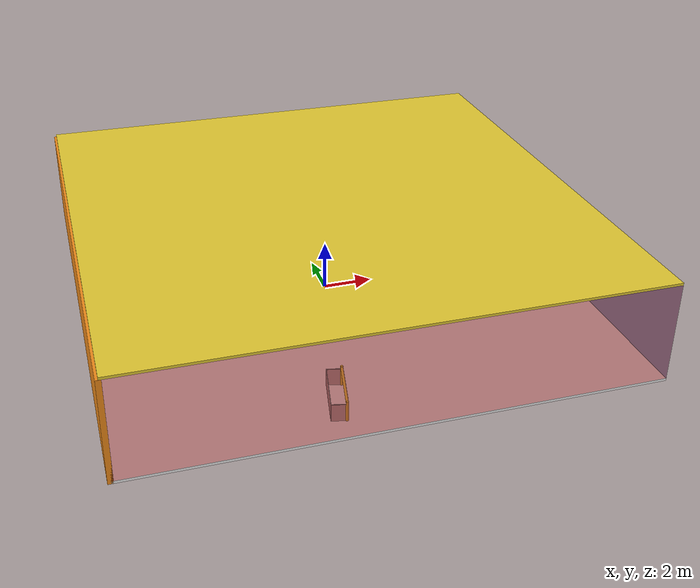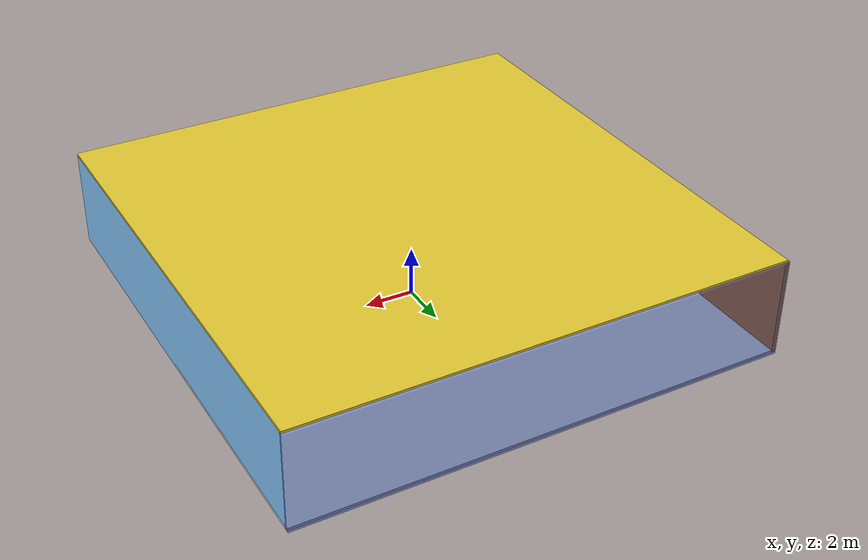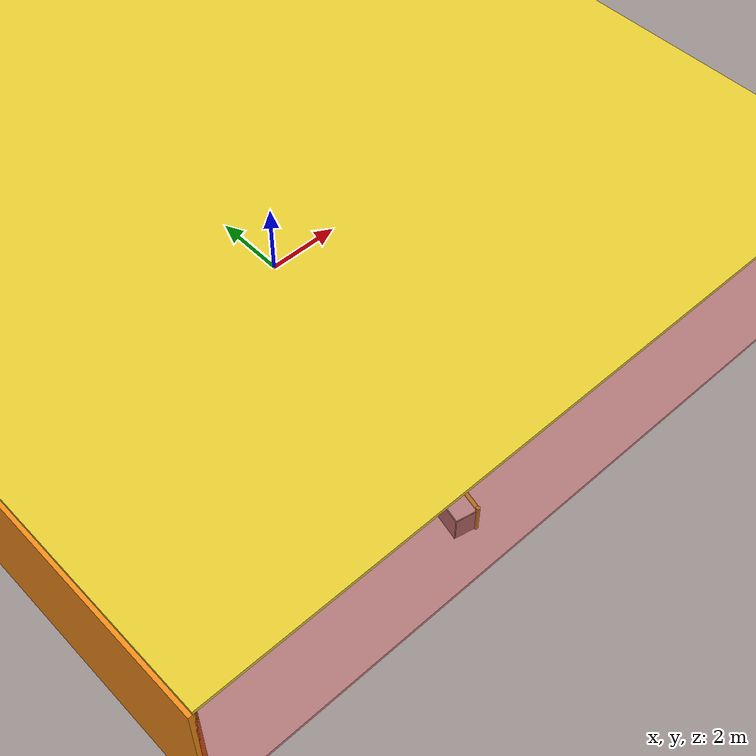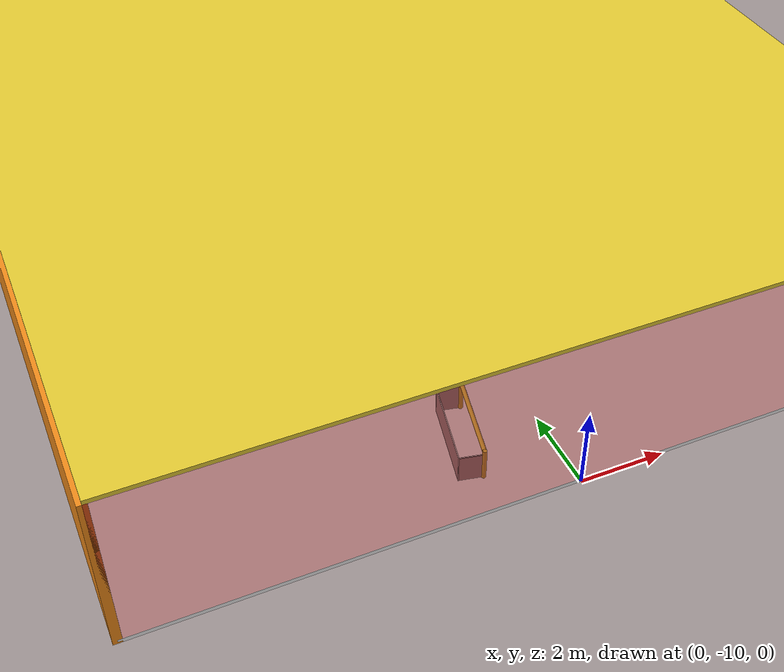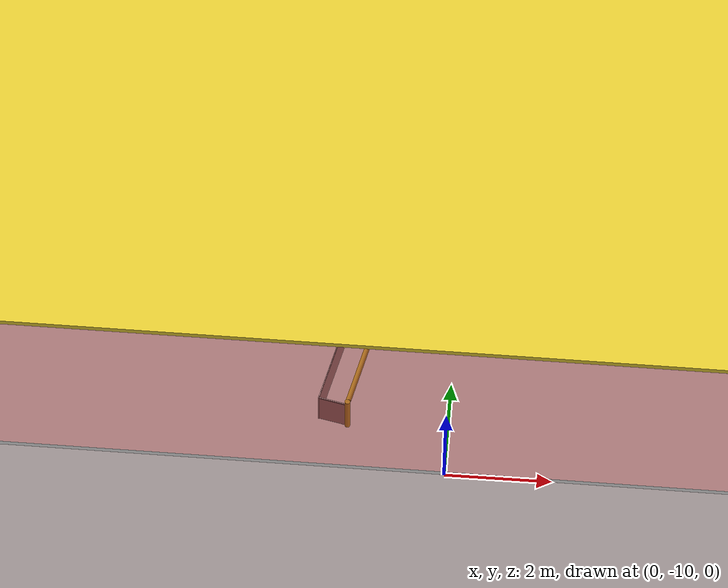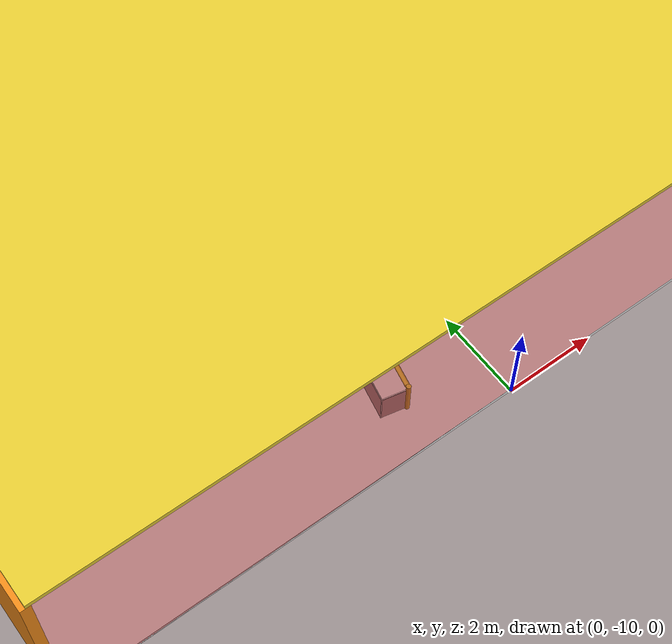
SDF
<sdf version="1.4">
 <world name="default">
  <physics type="ode">
   <max_step_size>0.001</max_step_size>
   <real_time_factor>1</real_time_factor>
   <real_time_update_rate>1000</real_time_update_rate>
   <gravity>0 0 -9.8</gravity>
  </physics>
  <scene><ambient>0.4 0.4 0.4 1</ambient><background>0.7 0.7 0.7 1</background><shadows>1</shadows></scene>
  <model name="Surrounding">
   <static>1</static>
   <link name="Ceiling">
    <collision name="Ceiling_Collision"><geometry><box><size>20 20 0.1</size></box></geometry></collision>
    <visual name="Ceiling_Visual">
     <geometry><box><size>20 20 0.1</size></box></geometry>
     <material>
      <script><uri>file://media/materials/scripts/gazebo.material</uri><name>Gazebo/ZincYellow</name></script>
     </material>
    </visual>
    <pose>0 0 4.05 0 0 0</pose>
   </link>
   <link name="Wall_South">
    <collision name="Wall_South_Collision">
     <geometry><box><size>20 0 4</size></box></geometry>
     <pose>0 0 2 0 -0 0</pose>
    </collision>
    <visual name="Wall_South_Visual">
     <pose>0 0 2 0 -0 0</pose>
     <geometry><box><size>20 0 4</size></box></geometry>
     <material>
      <script><uri>file://media/materials/scripts/gazebo.material</uri><name>Gazebo/RedTransparent</name></script>
     </material>
    </visual>
    <velocity_decay><linear>0</linear><angular>0</angular></velocity_decay>
    <pose>0 -10 0 0 -0 0</pose>
   </link>
   <link name="Wall_East">
    <collision name="Wall_21_Collision">
     <geometry><box><size>20 0 4</size></box></geometry>
     <pose>0 0 2 0 -0 0</pose>
    </collision>
    <visual name="Wall_21_Visual">
     <pose>0 0 2 0 -0 0</pose>
     <geometry><box><size>20 0 4</size></box></geometry>
     <material>
      <script><uri>file://media/materials/scripts/gazebo.material</uri><name>Gazebo/SkyBlue</name></script>
     </material>
    </visual>
    <velocity_decay><linear>0</linear><angular>0</angular></velocity_decay>
    <pose>10 0 0 0 -0 1.5708</pose>
   </link>
   <link name="Wall_North">
    <collision name="Wall_22_Collision">
     <geometry><box><size>20 0.2 4</size></box></geometry>
     <pose>0 0 2 0 -0 0</pose>
    </collision>
    <visual name="Wall_22_Visual">
     <pose>0 0 2 0 -0 0</pose>
     <geometry><box><size>20 0.2 4</size></box></geometry>
     <material>
      <script><uri>file://media/materials/scripts/gazebo.material</uri><name>Gazebo/BlueTransparent</name></script>
     </material>
    </visual>
    <velocity_decay><linear>0</linear><angular>0</angular></velocity_decay>
    <pose>0 10 0 0 -0 0</pose>
   </link>
   <link name="Wall_West">
    <collision name="Wall_23_Collision">
     <geometry><box><size>20 0.2 4</size></box></geometry>
     <pose>0 0 2 0 -0 0</pose>
    </collision>
    <visual name="Wall_23_Visual">
     <pose>0 0 2 0 -0 0</pose>
     <geometry><box><size>20 0.2 4</size></box></geometry>
     <material>
      <script><uri>file://media/materials/scripts/gazebo.material</uri><name>Gazebo/Orange</name></script>
     </material>
    </visual>
    <velocity_decay><linear>0</linear><angular>0</angular></velocity_decay>
    <pose>-10 0 0 0 0 -1.5708</pose>
   </link>
   <link name="Ground_link">
    <collision name="collision">
     <pose>0 0 .05 0 -0 0</pose>
     <geometry><box><size>20 20 0.1</size></box></geometry>
    </collision>
    <visual name="visual">
     <pose>0 0 .05 0 -0 0</pose>
     <geometry><box><size>20 20 0.1</size></box></geometry>
     <material>
      <script><uri>file://media/materials/scripts/gazebo.material</uri><name>Gazebo/WhiteGlow</name></script>
     </material>
    </visual>
   </link>
   <static>1</static>
  </model>
  <spherical_coordinates>
   <surface_model>EARTH_WGS84</surface_model>
   <latitude_deg>0</latitude_deg>
   <longitude_deg>0</longitude_deg>
   <elevation>0</elevation>
   <heading_deg>0</heading_deg>
  </spherical_coordinates>
  <light name="lightball_0" type="diffuse">
   <diffuse>0.8 0.8 0.8 1</diffuse>
   <specular>0.2 0.2 0.2 1</specular>
   <attenuation>
    <range>100</range>
    <constant>0.7</constant>
    <linear>0.01</linear>
    <quadratic>0.001</quadratic>
   </attenuation>
   <direction>-0.5 0.1 -0.9</direction>
   <pose>-1.20090064215 5.42925227162 2.221063189 0 0 0</pose>
  </light>
  <light name="lightball_1" type="diffuse">
   <diffuse>0.8 0.8 0.8 1</diffuse>
   <specular>0.2 0.2 0.2 1</specular>
   <attenuation>
    <range>100</range>
    <constant>0.7</constant>
    <linear>0.01</linear>
    <quadratic>0.001</quadratic>
   </attenuation>
   <direction>-0.5 0.1 -0.9</direction>
   <pose>1.84541804005 -8.06533191923 0.989058058903 0 0 0</pose>
  </light>
  <light name="lightball_2" type="diffuse">
   <diffuse>0.8 0.8 0.8 1</diffuse>
   <specular>0.2 0.2 0.2 1</specular>
   <attenuation>
    <range>100</range>
    <constant>0.7</constant>
    <linear>0.01</linear>
    <quadratic>0.001</quadratic>
   </attenuation>
   <direction>-0.5 0.1 -0.9</direction>
   <pose>-0.308325625561 -8.59317715274 1.47175827231 0 0 0</pose>
  </light>
  <light name="lightball_3" type="diffuse">
   <diffuse>0.8 0.8 0.8 1</diffuse>
   <specular>0.2 0.2 0.2 1</specular>
   <attenuation>
    <range>100</range>
    <constant>0.7</constant>
    <linear>0.01</linear>
    <quadratic>0.001</quadratic>
   </attenuation>
   <direction>-0.5 0.1 -0.9</direction>
   <pose>2.35021699208 -0.629440433577 2.91976731105 0 0 0</pose>
  </light>
  <light name="lightball_4" type="diffuse">
   <diffuse>0.8 0.8 0.8 1</diffuse>
   <specular>0.2 0.2 0.2 1</specular>
   <attenuation>
    <range>100</range>
    <constant>0.7</constant>
    <linear>0.01</linear>
    <quadratic>0.001</quadratic>
   </attenuation>
   <direction>-0.5 0.1 -0.9</direction>
   <pose>6.48578118685 4.26691342567 2.30659713739 0 0 0</pose>
  </light>
  <light name="lightball_5" type="diffuse">
   <diffuse>0.8 0.8 0.8 1</diffuse>
   <specular>0.2 0.2 0.2 1</specular>
   <attenuation>
    <range>100</range>
    <constant>0.7</constant>
    <linear>0.01</linear>
    <quadratic>0.001</quadratic>
   </attenuation>
   <direction>-0.5 0.1 -0.9</direction>
   <pose>3.79740473295 -2.50715968144 1.17954599766 0 0 0</pose>
  </light>
  <light name="lightball_6" type="diffuse">
   <diffuse>0.8 0.8 0.8 1</diffuse>
   <specular>0.2 0.2 0.2 1</specular>
   <attenuation>
    <range>100</range>
    <constant>0.7</constant>
    <linear>0.01</linear>
    <quadratic>0.001</quadratic>
   </attenuation>
   <direction>-0.5 0.1 -0.9</direction>
   <pose>1.81718992502 -4.47208255064 0.924515944407 0 0 0</pose>
  </light>
  <light name="lightball_7" type="diffuse">
   <diffuse>0.8 0.8 0.8 1</diffuse>
   <specular>0.2 0.2 0.2 1</specular>
   <attenuation>
    <range>100</range>
    <constant>0.7</constant>
    <linear>0.01</linear>
    <quadratic>0.001</quadratic>
   </attenuation>
   <direction>-0.5 0.1 -0.9</direction>
   <pose>7.84037366361 -7.75096274424 0.751838393282 0 0 0</pose>
  </light>
  <light name="lightball_8" type="diffuse">
   <diffuse>0.8 0.8 0.8 1</diffuse>
   <specular>0.2 0.2 0.2 1</specular>
   <attenuation>
    <range>100</range>
    <constant>0.7</constant>
    <linear>0.01</linear>
    <quadratic>0.001</quadratic>
   </attenuation>
   <direction>-0.5 0.1 -0.9</direction>
   <pose>-3.1874621213 3.7820242938 1.99526250897 0 0 0</pose>
  </light>
  <light name="lightball_9" type="diffuse">
   <diffuse>0.8 0.8 0.8 1</diffuse>
   <specular>0.2 0.2 0.2 1</specular>
   <attenuation>
    <range>100</range>
    <constant>0.7</constant>
    <linear>0.01</linear>
    <quadratic>0.001</quadratic>
   </attenuation>
   <direction>-0.5 0.1 -0.9</direction>
   <pose>-9.70898334481 -0.581962970494 0.693082045054 0 0 0</pose>
  </light>
  <light name="lightball_10" type="diffuse">
   <diffuse>0.8 0.8 0.8 1</diffuse>
   <specular>0.2 0.2 0.2 1</specular>
   <attenuation>
    <range>100</range>
    <constant>0.7</constant>
    <linear>0.01</linear>
    <quadratic>0.001</quadratic>
   </attenuation>
   <direction>-0.5 0.1 -0.9</direction>
   <pose>6.52711951405 -0.186285022198 0.749848248393 0 0 0</pose>
  </light>
  <include>
   <uri>model://robocup_3Dsim_goal</uri>
   <pose>-1.66469546977 -8.08777838768 0 0 0 2.93250784708</pose>
  </include>
  <include><uri>model://cabinet</uri><pose>2.37660645561 4.63186774667 0 0 0 0.631832376645</pose></include>
  <include><uri>model://cabinet</uri><pose>5.62770803821 4.72266779889 0 0 0 1.25223311086</pose></include>
 </world>
</sdf>

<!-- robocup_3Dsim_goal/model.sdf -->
<sdf version="1.5">
  <model name="robocup_3d_goal">
    <static>true</static>
    <link name="left_post">
      <pose>0 1.05 0.45 0 0 0</pose>
      <collision name="collision">
        <geometry>
          <cylinder>
            <radius>0.05</radius>
            <length>0.9</length>
          </cylinder>
        </geometry>
      </collision>
      <visual name="visual">
        <geometry>
          <cylinder>
            <radius>0.05</radius>
            <length>0.9</length>
          </cylinder>
        </geometry>
        <material>
          <script>
            <uri>file://media/materials/scripts/gazebo.material</uri>
            <name>Gazebo/ZincYellow</name>
          </script>
        </material>
      </visual>
    </link>
    <link name="left_support_horiz_lower">
      <pose>0.30 1.05 0.01 0 0 0</pose>
      <collision name="collision">
        <geometry>
          <box>
            <size>0.50 0.02 0.02</size>
          </box>
        </geometry>
      </collision>
      <visual name="visual">
        <geometry>
          <box>
            <size>0.50 0.02 0.02</size>
          </box>
        </geometry>
        <material>
          <script>
            <uri>file://media/materials/scripts/gazebo.material</uri>
            <name>Gazebo/White</name>
          </script>
        </material>
      </visual>
    </link>
    <link name="left_support_horiz_upper">
      <pose>0.30 1.05 0.79 0 0 0</pose>
      <collision name="collision">
        <geometry>
          <box>
            <size>0.50 0.02 0.02</size>
          </box>
        </geometry>
      </collision>
      <visual name="visual">
        <geometry>
          <box>
            <size>0.50 0.02 0.02</size>
          </box>
        </geometry>
        <material>
          <script>
            <uri>file://media/materials/scripts/gazebo.material</uri>
            <name>Gazebo/White</name>
          </script>
        </material>
      </visual>
    </link>
    <link name="left_support_vertical">
      <pose>0.56 1.05 0.4 0 1.5708 0</pose>
      <collision name="collision">
        <geometry>
          <box>
            <size>0.80 0.02 0.02</size>
          </box>
        </geometry>
      </collision>
      <visual name="visual">
        <geometry>
          <box>
            <size>0.80 0.02 0.02</size>
          </box>
        </geometry>
        <material>
          <script>
            <uri>file://media/materials/scripts/gazebo.material</uri>
            <name>Gazebo/White</name>
          </script>
        </material>
      </visual>
    </link>
    <link name="right_support_horiz_lower">
      <pose>0.30 -1.05 0.01 0 0 0</pose>
      <collision name="collision">
        <geometry>
          <box>
            <size>0.50 0.02 0.02</size>
          </box>
        </geometry>
      </collision>
      <visual name="visual">
        <geometry>
          <box>
            <size>0.50 0.02 0.02</size>
          </box>
        </geometry>
        <material>
          <script>
            <uri>file://media/materials/scripts/gazebo.material</uri>
            <name>Gazebo/White</name>
          </script>
        </material>
      </visual>
    </link>
    <link name="right_support_horiz_upper">
      <pose>0.30 -1.05 0.79 0 0 0</pose>
      <collision name="collision">
        <geometry>
          <box>
            <size>0.50 0.02 0.02</size>
          </box>
        </geometry>
      </collision>
      <visual name="visual">
        <geometry>
          <box>
            <size>0.50 0.02 0.02</size>
          </box>
        </geometry>
        <material>
          <script>
            <uri>file://media/materials/scripts/gazebo.material</uri>
            <name>Gazebo/White</name>
          </script>
        </material>
      </visual>
    </link>
    <link name="right_support_vertical">
      <pose>0.56 -1.05 0.4 0 1.5708 0</pose>
      <collision name="collision">
        <geometry>
          <box>
            <size>0.80 0.02 0.02</size>
          </box>
        </geometry>
      </collision>
      <visual name="visual">
        <geometry>
          <box>
            <size>0.80 0.02 0.02</size>
          </box>
        </geometry>
        <material>
          <script>
            <uri>file://media/materials/scripts/gazebo.material</uri>
            <name>Gazebo/White</name>
          </script>
        </material>
      </visual>
    </link>
    <link name="center_support_horiz_lower">
      <pose>0.56 0 0.01 0 1.5708 0</pose>
      <collision name="collision">
        <geometry>
          <box>
            <size>0.02 2.08 0.02</size>
          </box>
        </geometry>
      </collision>
      <visual name="visual">
        <geometry>
          <box>
            <size>0.02 2.08 0.02</size>
          </box>
        </geometry>
        <material>
          <script>
            <uri>file://media/materials/scripts/gazebo.material</uri>
            <name>Gazebo/White</name>
          </script>
        </material>
      </visual>
    </link>
    <link name="center_support_horiz_upper">
      <pose>0.56 0 0.79 0 1.5708 0</pose>
      <collision name="collision">
        <geometry>
          <box>
            <size>0.02 2.08 0.02</size>
          </box>
        </geometry>
      </collision>
      <visual name="visual">
        <geometry>
          <box>
            <size>0.02 2.08 0.02</size>
          </box>
        </geometry>
        <material>
          <script>
            <uri>file://media/materials/scripts/gazebo.material</uri>
            <name>Gazebo/White</name>
          </script>
        </material>
      </visual>
    </link>
    <link name="right_post">
      <pose>0 -1.05 0.45 0 0 0</pose>
      <collision name="collision">
        <geometry>
          <cylinder>
            <radius>0.05</radius>
            <length>0.9</length>
          </cylinder>
        </geometry>
      </collision>
      <visual name="visual">
        <geometry>
          <cylinder>
            <radius>0.05</radius>
            <length>0.9</length>
          </cylinder>
        </geometry>
        <material>
          <script>
            <uri>file://media/materials/scripts/gazebo.material</uri>
            <name>Gazebo/ZincYellow</name>
          </script>
        </material>
      </visual>
    </link>
    <link name="crossbar">
      <pose>0 0 0.85 1.57 1.57 0</pose>
      <collision name="collision">
        <geometry>
          <cylinder>
            <radius>0.05</radius>
            <length>2.0</length>
          </cylinder>
        </geometry>
      </collision>
      <visual name="visual">
        <geometry>
          <cylinder>
            <radius>0.05</radius>
            <length>2.0</length>
          </cylinder>
        </geometry>
        <material>
          <script>
            <uri>file://media/materials/scripts/gazebo.material</uri>
            <name>Gazebo/ZincYellow</name>
          </script>
        </material>
      </visual>
    </link>
    <link name="center_net">
      <pose>0.56 0 0.40 0 0 0</pose>
      <collision name="collision">
        <geometry>
          <box>
            <size>0.01 2.1 0.80</size>
          </box>
        </geometry>
      </collision>
      <visual name="visual">
        <geometry>
          <box>
            <size>0.01 2.1 0.80</size>
          </box>
        </geometry>
        <material>
          <script>
            <uri>model://../model_source/models/robocup09_spl_field/materials/scripts/</uri>
            <uri>model://../model_source/models/robocup09_spl_field/materials/textures/</uri>
            <name>RoboCup/Net</name>
          </script>
        </material>
      </visual>
    </link>
    <link name="left_net">
      <pose>0.30 1.05 0.40 0 0 0</pose>
      <collision name="collision">
        <geometry>
          <box>
            <size>0.50 0.01 0.76</size>
          </box>
        </geometry>
      </collision>
      <visual name="visual">
        <geometry>
          <box>
            <size>0.50 0.01 0.76</size>
          </box>
        </geometry>
        <material>
          <script>
            <uri>model://../model_source/models/robocup09_spl_field/materials/scripts/</uri>
            <uri>model://../model_source/models/robocup09_spl_field/materials/textures/</uri>
            <name>RoboCup/Net</name>
          </script>
        </material>
      </visual>
    </link>
    <link name="right_net">
      <pose>0.30 -1.05 0.40 0 0 0</pose>
      <collision name="collision">
        <geometry>
          <box>
            <size>0.50 0.01 0.76</size>
          </box>
        </geometry>
      </collision>
      <visual name="visual">
        <geometry>
          <box>
            <size>0.50 0.01 0.76</size>
          </box>
        </geometry>
        <material>
          <script>
            <uri>model://../model_source/models/robocup09_spl_field/materials/scripts/</uri>
            <uri>model://../model_source/models/robocup09_spl_field/materials/textures/</uri>
            <name>RoboCup/Net</name>
          </script>
        </material>
      </visual>
    </link>
  </model>
</sdf>

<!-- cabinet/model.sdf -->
<sdf version="1.5">
  <model name="cabinet">
    <static>true</static>
    <link name="cabinet_bottom_plate">
      <inertial>
        <pose>0 0 -1 0 0 0</pose>
        <inertia>
          <ixx>2.050000</ixx>
          <ixy>0</ixy>
          <ixz>0</ixz>
          <iyy>2.050000</iyy>
          <iyz>0</iyz>
          <izz>2.050000</izz>
        </inertia>
        <mass>25.000000</mass>
      </inertial>
      <collision name="cabinet_bottom_plate_geom">
        <pose>0 0 0.010000 0 0 0</pose>
        <geometry>
          <box>
            <size>0.450000 0.450000 0.020000</size>
          </box>
        </geometry>
      </collision>
      <visual name="cabinet_bottom_plate_geom_visual">
        <pose>0 0 0.010000 0 0 0</pose>
        <geometry>
          <box>
            <size>0.450000 0.450000 0.020000</size>
          </box>
        </geometry>
        <material>
          <script>
            <uri>model://media/materials/scripts/gazebo.material</uri>
            <name>Gazebo/Wood</name>
          </script>
        </material>
      </visual>
      <collision name="cabinet_bottom_plate_geom_cabinet_back_plate">
        <pose>0.235000 0 0.510000 0 0 0</pose>
        <geometry>
          <box>
            <size>0.020000 0.450000 1.020000</size>
          </box>
        </geometry>
      </collision>
      <visual name="cabinet_bottom_plate_geom_cabinet_back_plate_visual">
        <pose>0.235000 0 0.510000 0 0 0</pose>
        <geometry>
          <box>
            <size>0.020000 0.450000 1.020000</size>
          </box>
        </geometry>
        <material>
          <script>
            <uri>model://media/materials/scripts/gazebo.material</uri>
            <name>Gazebo/Wood</name>
          </script>
        </material>
      </visual>
      <collision name="cabinet_bottom_plate_geom_cabinet_left_plate">
        <pose>0 0.235000 0.510000 0 0 0</pose>
        <geometry>
          <box>
            <size>0.450000 0.020000 1.020000</size>
          </box>
        </geometry>
      </collision>
      <visual name="cabinet_bottom_plate_geom_cabinet_left_plate_visual">
        <pose>0 0.235000 0.510000 0 0 0</pose>
        <geometry>
          <box>
            <size>0.450000 0.020000 1.020000</size>
          </box>
        </geometry>
        <material>
          <script>
            <uri>model://media/materials/scripts/gazebo.material</uri>
            <name>Gazebo/Wood</name>
          </script>
        </material>
      </visual>
      <collision name="cabinet_bottom_plate_geom_cabinet_middle_plate">
        <pose>0 0 0.510000 0 0 0</pose>
        <geometry>
          <box>
            <size>0.450000 0.450000 0.020000</size>
          </box>
        </geometry>
      </collision>
      <visual name="cabinet_bottom_plate_geom_cabinet_middle_plate_visual">
        <pose>0 0 0.510000 0 0 0</pose>
        <geometry>
          <box>
            <size>0.450000 0.450000 0.020000</size>
          </box>
        </geometry>
        <material>
          <script>
            <uri>model://media/materials/scripts/gazebo.material</uri>
            <name>Gazebo/Wood</name>
          </script>
        </material>
      </visual>
      <collision name="cabinet_bottom_plate_geom_cabinet_right_plate">
        <pose>0 -0.235000 0.510000 0 0 0</pose>
        <geometry>
          <box>
            <size>0.450000 0.020000 1.020000</size>
          </box>
        </geometry>
      </collision>
      <visual name="cabinet_bottom_plate_geom_cabinet_right_plate_visual">
        <pose>0 -0.235000 0.510000 0 0 0</pose>
        <geometry>
          <box>
            <size>0.450000 0.020000 1.020000</size>
          </box>
        </geometry>
        <material>
          <script>
            <uri>model://media/materials/scripts/gazebo.material</uri>
            <name>Gazebo/Wood</name>
          </script>
        </material>
      </visual>
      <collision name="cabinet_bottom_plate_geom_cabinet_top_plate">
        <pose>0 0 1.010000 0 0 0</pose>
        <geometry>
          <box>
            <size>0.450000 0.450000 0.020000</size>
          </box>
        </geometry>
      </collision>
      <visual name="cabinet_bottom_plate_geom_cabinet_top_plate_visual">
        <pose>0 0 1.010000 0 0 0</pose>
        <geometry>
          <box>
            <size>0.450000 0.450000 0.020000</size>
          </box>
        </geometry>
        <material>
          <script>
            <uri>model://media/materials/scripts/gazebo.material</uri>
            <name>Gazebo/Wood</name>
          </script>
        </material>
      </visual>
    </link>
  </model>
</sdf>
